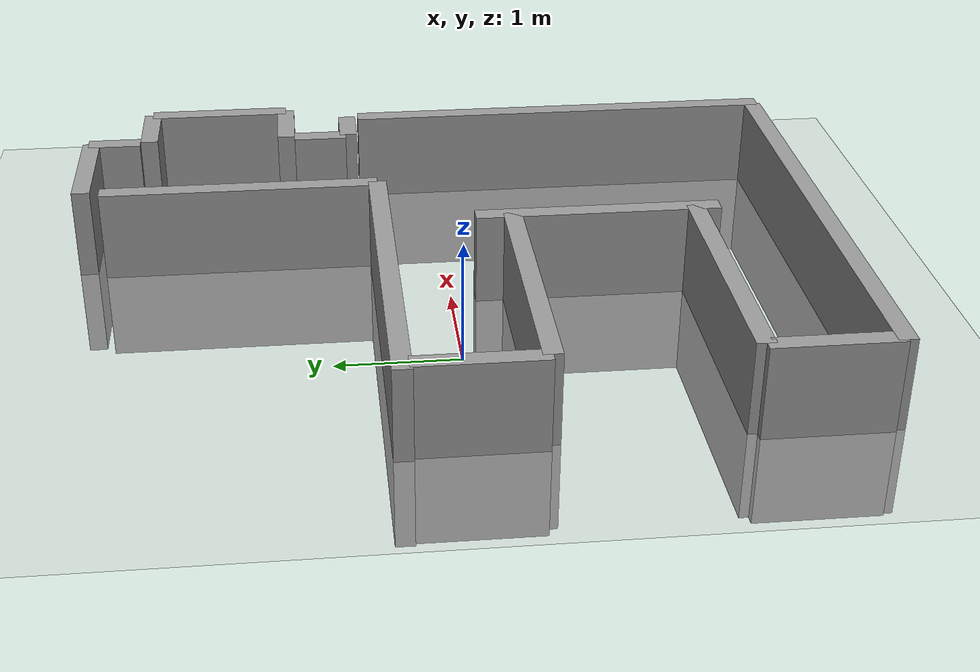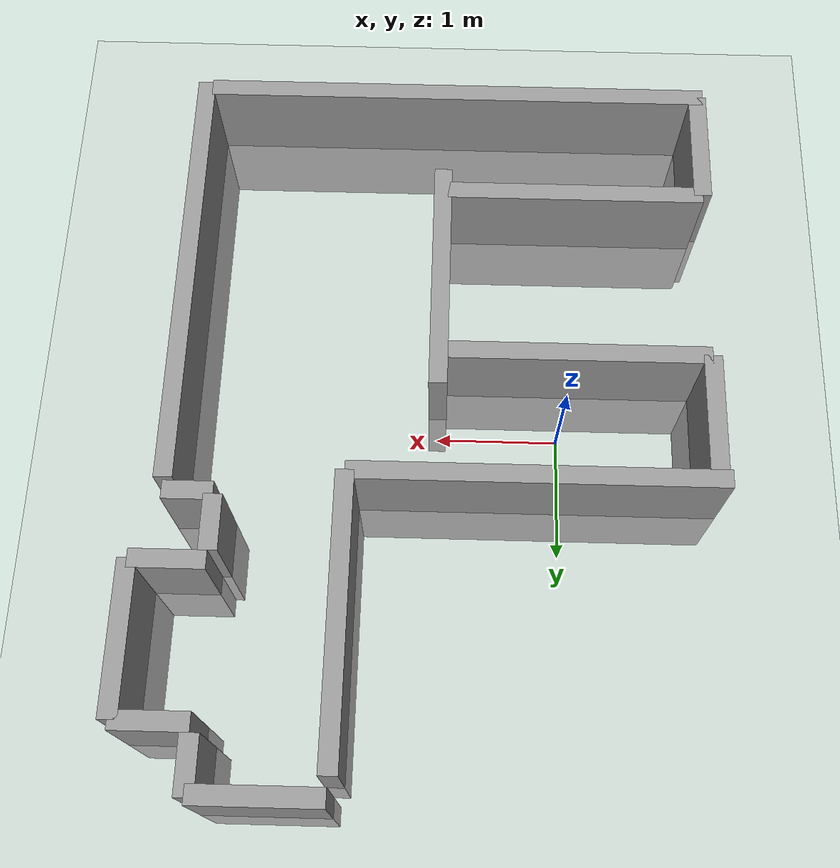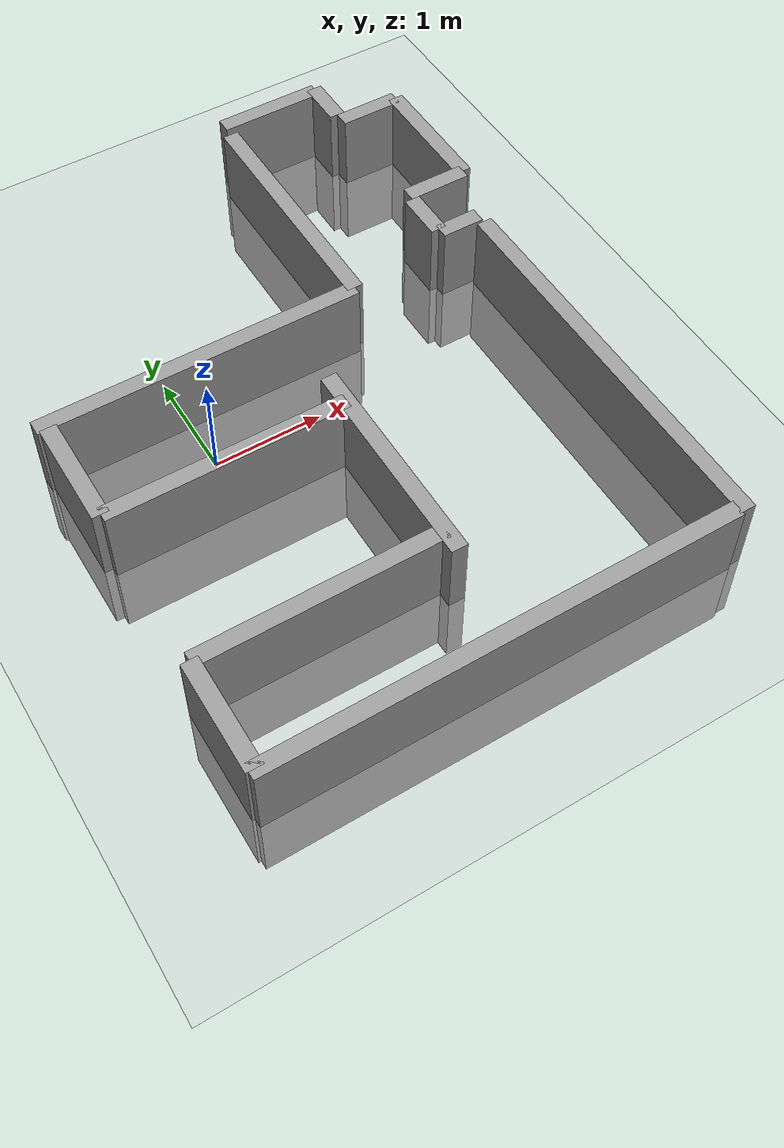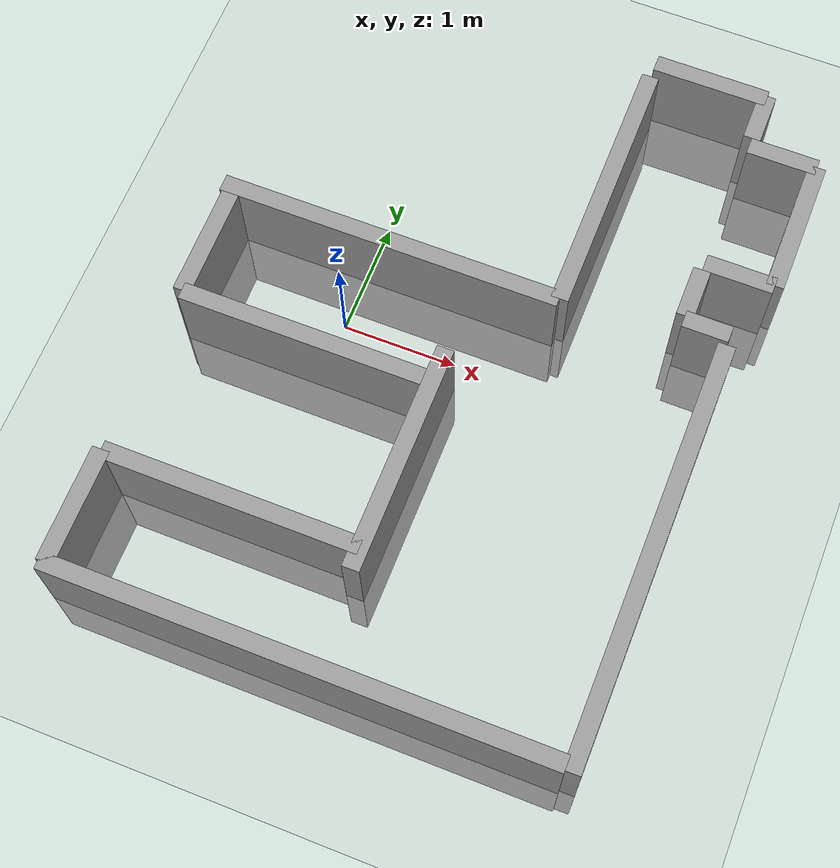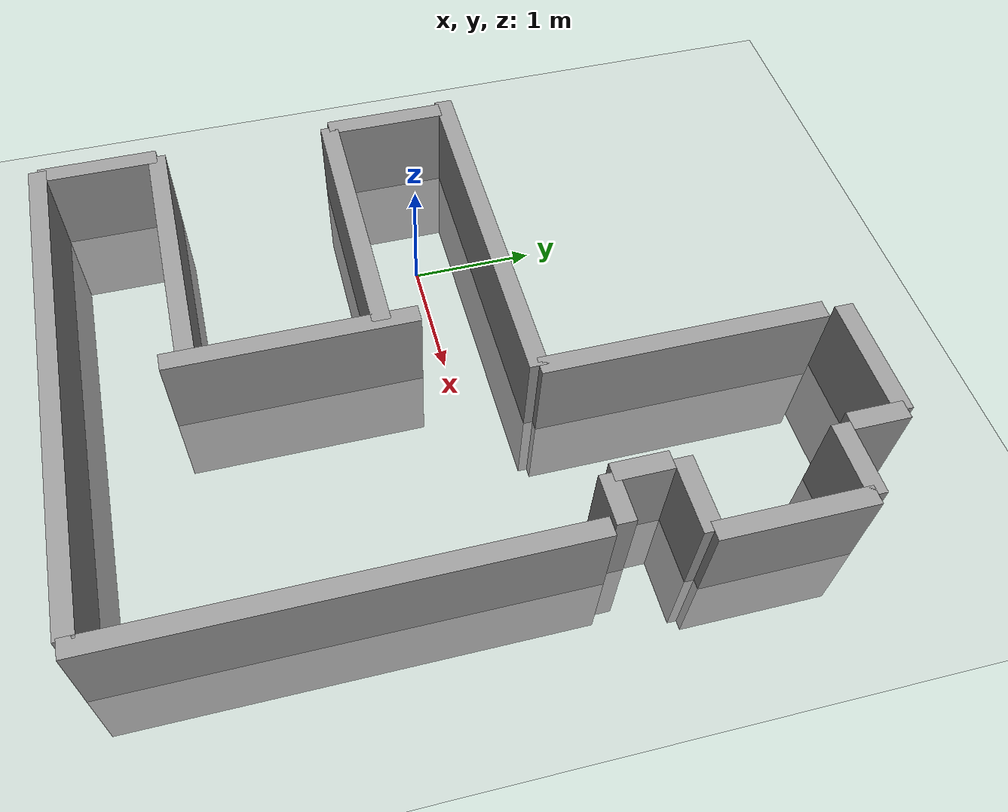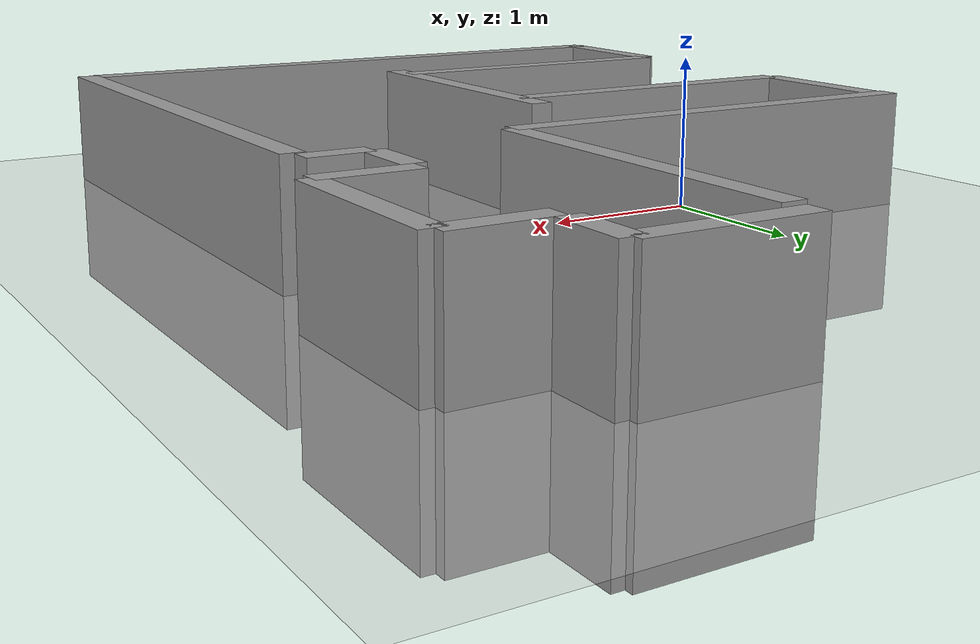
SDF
<sdf version='1.4'>
  <world name='default'>
    <light name='sun' type='directional'>
      <cast_shadows>1</cast_shadows>
      <pose>0 0 10 0 -0 0</pose>
      <diffuse>0.8 0.8 0.8 1</diffuse>
      <specular>0.2 0.2 0.2 1</specular>
      <attenuation>
        <range>1000</range>
        <constant>0.9</constant>
        <linear>0.01</linear>
        <quadratic>0.001</quadratic>
      </attenuation>
      <direction>0.5 0.1 -0.9</direction>
    </light>
        <model name='ground_plane'>
      <static>1</static>
      <link name='link'>
        <collision name='collision'>
          <geometry>
            <plane>
              <normal>0 0 1</normal>
              <size>100 100</size>
            </plane>
          </geometry>
          <surface>
            <friction>
              <ode>
                <mu>100</mu>
                <mu2>50</mu2>
              </ode>
            </friction>
            <bounce/>
            <contact>
              <ode/>
            </contact>
          </surface>
          <max_contacts>10</max_contacts>
        </collision>
        <visual name='visual'>
          <cast_shadows>0</cast_shadows>
          <geometry>
            <plane>
              <normal>0 0 1</normal>
              <size>100 100</size>
            </plane>
          </geometry>
          <material>
            <script>
              <uri>file://media/materials/scripts/gazebo.material</uri>
              <name>Gazebo/Grey</name>
            </script>
          </material>
        </visual>
        <velocity_decay>
          <linear>0</linear>
          <angular>0</angular>
        </velocity_decay>
        <self_collide>0</self_collide>
        <kinematic>0</kinematic>
        <gravity>1</gravity>
      </link>
    </model>
    <scene>
      <ambient>0.4 0.4 0.4 1</ambient>
      <background>0.7 0.7 0.7 1</background>
      <shadows>0</shadows>
    </scene>
    <gui fullscreen='0'>
      <camera name='user_camera'>
        <pose>1 0 8 0 1.56 3.14</pose>
        <view_controller>orbit</view_controller>
      </camera>
    </gui>
  <model name='myworld'>
    <pose frame=''>0 0 0 0 -0 0</pose>
    <link name='Wall_0'>
      <collision name='Wall_0_Collision'>
        <geometry>
          <box>
            <size>3 0.15 1.5</size>
          </box>
        </geometry>
        <pose frame=''>0.5 0 0 0 -0 0</pose>
      </collision>
      <visual name='Wall_0_Visual'>
        <pose frame=''>0.5 0 0 0 -0 0</pose>
        <geometry>
          <box>
            <size>3 0.15 1.5</size>
          </box>
        </geometry>
        <material>
          <script>
            <uri>file://media/materials/scripts/gazebo.material</uri>
            <name>Gazebo/Grey</name>
          </script>
          <ambient>1 1 1 1</ambient>
        </material>
      </visual>
      <pose frame=''>-0.3 0.55 0 0 0 0</pose>
    </link>
   <link name='Wall_1'>
      <collision name='Wall_1_Collision'>
        <geometry>
          <box>
            <size>2.2 0.15 1.5</size>
          </box>
        </geometry>
        <pose frame=''>0.5 0 0 0 -0 0</pose>
      </collision>
      <visual name='Wall_1_Visual'>
        <pose frame=''>0.5 0 0 0 -0 0</pose>
        <geometry>
          <box>
            <size>2.2 0.15 1.5</size>
          </box>
        </geometry>
        <material>
          <script>
            <uri>file://media/materials/scripts/gazebo.material</uri>
            <name>Gazebo/Grey</name>
          </script>
          <ambient>1 1 1 1</ambient>
        </material>
      </visual>
      <pose frame=''>-0.6 -0.5 0 0 0 0</pose>
    </link>
   <link name='Wall_2'>
      <collision name='Wall_2_Collision'>
        <geometry>
          <box>
            <size>1 0.15 1.5</size>
          </box>
        </geometry>
        <pose frame=''>0.5 0 0 0 -0 0</pose>
      </collision>
      <visual name='Wall_2_Visual'>
        <pose frame=''>0.5 0 0 0 -0 0</pose>
        <geometry>
          <box>
            <size>1 0.15 1.5</size>
          </box>
        </geometry>
        <material>
          <script>
            <uri>file://media/materials/scripts/gazebo.material</uri>
            <name>Gazebo/Grey</name>
          </script>
          <ambient>1 1 1 1</ambient>
        </material>
      </visual>
      <pose frame=''>-1.2 0.5 0 0 0 -1.5708</pose>
    </link>
   <link name='Wall_3'>
      <collision name='Wall_3_Collision'>
        <geometry>
          <box>
            <size>2 0.15 1.5</size>
          </box>
        </geometry>
        <pose frame=''>0.5 0 0 0 -0 0</pose>
      </collision>
      <visual name='Wall_3_Visual'>
        <pose frame=''>0.5 0 0 0 -0 0</pose>
        <geometry>
          <box>
            <size>2 0.15 1.5</size>
          </box>
        </geometry>
        <material>
          <script>
            <uri>file://media/materials/scripts/gazebo.material</uri>
            <name>Gazebo/Grey</name>
          </script>
          <ambient>1 1 1 1</ambient>
        </material>
      </visual>
      <pose frame=''>1 -0.7 0 0 0 -1.5708</pose>
    </link>
    <link name='Wall_4'>
      <collision name='Wall_4_Collision'>
        <geometry>
          <box>
            <size>2.2 0.15 1.5</size>
          </box>
        </geometry>
        <pose frame=''>0.5 0 0 0 -0 0</pose>
      </collision>
      <visual name='Wall_4_Visual'>
        <pose frame=''>0.5 0 0 0 -0 0</pose>
        <geometry>
          <box>
            <size>2.2 0.15 1.5</size>
          </box>
        </geometry>
        <material>
          <script>
            <uri>file://media/materials/scripts/gazebo.material</uri>
            <name>Gazebo/Grey</name>
          </script>
          <ambient>1 1 1 1</ambient>
        </material>
      </visual>
      <pose frame=''>-0.6 -2 0 0 0 0</pose>
    </link>

   <link name='Wall_5'>
      <collision name='Wall_5_Collision'>
        <geometry>
          <box>
            <size>1 0.15 1.5</size>
          </box>
        </geometry>
        <pose frame=''>0.5 0 0 0 -0 0</pose>
      </collision>
      <visual name='Wall_5_Visual'>
        <pose frame=''>0.5 0 0 0 -0 0</pose>
        <geometry>
          <box>
            <size>1 0.15 1.5</size>
          </box>
        </geometry>
        <material>
          <script>
            <uri>file://media/materials/scripts/gazebo.material</uri>
            <name>Gazebo/Grey</name>
          </script>
          <ambient>1 1 1 1</ambient>
        </material>
      </visual>
      <pose frame=''>-1.2 -2 0 0 0 -1.5708</pose>
    </link>

    <link name='Wall_6'>
      <collision name='Wall_6_Collision'>
        <geometry>
          <box>
            <size>0.4 0.15 1.5</size>
          </box>
        </geometry>
        <pose frame=''>0.5 0 0 0 -0 0</pose>
      </collision>
      <visual name='Wall_6_Visual'>
        <pose frame=''>0.5 0 0 0 -0 0</pose>
        <geometry>
          <box>
            <size>0.4 0.15 1.5</size>
          </box>
        </geometry>
        <material>
          <script>
            <uri>file://media/materials/scripts/gazebo.material</uri>
            <name>Gazebo/Grey</name>
          </script>
          <ambient>1 1 1 1</ambient>
        </material>
      </visual>
      <pose frame=''>2.4 0.75 0 0 0 0</pose>
    </link>

   <link name='Wall_7'>
      <collision name='Wall_7_Collision'>
        <geometry>
          <box>
            <size>4.3 0.15 1.5</size>
          </box>
        </geometry>
        <pose frame=''>0.5 0 0 0 -0 0</pose>
      </collision>
      <visual name='Wall_7_Visual'>
        <pose frame=''>0.5 0 0 0 -0 0</pose>
        <geometry>
          <box>
            <size>4.3 0.15 1.5</size>
          </box>
        </geometry>
        <material>
          <script>
            <uri>file://media/materials/scripts/gazebo.material</uri>
            <name>Gazebo/Grey</name>
          </script>
          <ambient>1 1 1 1</ambient>
        </material>
      </visual>
      <pose frame=''>0.4 -3 0 0 0 0</pose>
    </link>
   <link name='Wall_9'>
      <collision name='Wall_9_Collision'>
        <geometry>
          <box>
            <size>3.7 0.15 1.5</size>
          </box>
        </geometry>
        <pose frame=''>0.5 0 0 0 -0 0</pose>
      </collision>
      <visual name='Wall_9_Visual'>
        <pose frame=''>0.5 0 0 0 -0 0</pose>
        <geometry>
          <box>
            <size>3.7 0.15 1.5</size>
          </box>
        </geometry>
        <material>
          <script>
            <uri>file://media/materials/scripts/gazebo.material</uri>
            <name>Gazebo/Grey</name>
          </script>
          <ambient>1 1 1 1</ambient>
        </material>
      </visual>
      <pose frame=''>3.1 -0.7 0 0 0 -1.5708</pose>
    </link>
  <link name='Wall_11'>
      <collision name='Wall_11_Collision'>
        <geometry>
          <box>
            <size>0.45 0.15 1.5</size>
          </box>
        </geometry>
        <pose frame=''>0.5 0 0 0 -0 0</pose>
      </collision>
      <visual name='Wall_11_Visual'>
        <pose frame=''>0.5 0 0 0 -0 0</pose>
        <geometry>
          <box>
            <size>0.45 0.15 1.5</size>
          </box>
        </geometry>
        <material>
          <script>
            <uri>file://media/materials/scripts/gazebo.material</uri>
            <name>Gazebo/Grey</name>
          </script>
          <ambient>1 1 1 1</ambient>
        </material>
      </visual>
      <pose frame=''>2.7 1.5 0 0 0 -1.5708</pose>
    </link>
    <link name='Wall_12'>
      <collision name='Wall_12_Collision'>
        <geometry>
          <box>
            <size>0.6 0.15 1.5</size>
          </box>
        </geometry>
        <pose frame=''>0.5 0 0 0 -0 0</pose>
      </collision>
      <visual name='Wall_12_Visual'>
        <pose frame=''>0.5 0 0 0 -0 0</pose>
        <geometry>
          <box>
            <size>0.6 0.15 1.5</size>
          </box>
        </geometry>
        <material>
          <script>
            <uri>file://media/materials/scripts/gazebo.material</uri>
            <name>Gazebo/Grey</name>
          </script>
          <ambient>1 1 1 1</ambient>
        </material>
      </visual>
      <pose frame=''>2.5 1.3 0 0 0 0</pose>
    </link>
  <link name='Wall_13'>
      <collision name='Wall_13_Collision'>
        <geometry>
          <box>
            <size>1.2 0.15 1.5</size>
          </box>
        </geometry>
        <pose frame=''>0.5 0 0 0 -0 0</pose>
      </collision>
      <visual name='Wall_13_Visual'>
        <pose frame=''>0.5 0 0 0 -0 0</pose>
        <geometry>
          <box>
            <size>1.2 0.15 1.5</size>
          </box>
        </geometry>
        <material>
          <script>
            <uri>file://media/materials/scripts/gazebo.material</uri>
            <name>Gazebo/Grey</name>
          </script>
          <ambient>1 1 1 1</ambient>
        </material>
      </visual>
      <pose frame=''>3.3 2.4 0 0 0 -1.5708</pose>
    </link>

    <link name='Wall_14'>
      <collision name='Wall_14_Collision'>
        <geometry>
          <box>
            <size>0.6 0.15 1.5</size>
          </box>
        </geometry>
        <pose frame=''>0.5 0 0 0 -0 0</pose>
      </collision>
      <visual name='Wall_14_Visual'>
        <pose frame=''>0.5 0 0 0 -0 0</pose>
        <geometry>
          <box>
            <size>0.6 0.15 1.5</size>
          </box>
        </geometry>
        <material>
          <script>
            <uri>file://media/materials/scripts/gazebo.material</uri>
            <name>Gazebo/Grey</name>
          </script>
          <ambient>1 1 1 1</ambient>
        </material>
      </visual>
      <pose frame=''>2.5 2.5 0 0 0 0</pose>
    </link>
    <link name='Wall_15'>
      <collision name='Wall_15_Collision'>
        <geometry>
          <box>
            <size>1 0.15 1.5</size>
          </box>
        </geometry>
        <pose frame=''>0.5 0 0 0 -0 0</pose>
      </collision>
      <visual name='Wall_15_Visual'>
        <pose frame=''>0.5 0 0 0 -0 0</pose>
        <geometry>
          <box>
            <size>1 0.15 1.5</size>
          </box>
        </geometry>
        <material>
          <script>
            <uri>file://media/materials/scripts/gazebo.material</uri>
            <name>Gazebo/Grey</name>
          </script>
          <ambient>1 1 1 1</ambient>
        </material>
      </visual>
      <pose frame=''>1.7 3 0 0 0 0</pose>
    </link>
  <link name='Wall_16'>
      <collision name='Wall_16_Collision'>
        <geometry>
          <box>
            <size>0.4 0.15 1.5</size>
          </box>
        </geometry>
        <pose frame=''>0.5 0 0 0 -0 0</pose>
      </collision>
      <visual name='Wall_16_Visual'>
        <pose frame=''>0.5 0 0 0 -0 0</pose>
        <geometry>
          <box>
            <size>0.45 0.15 1.5</size>
          </box>
        </geometry>
        <material>
          <script>
            <uri>file://media/materials/scripts/gazebo.material</uri>
            <name>Gazebo/Grey</name>
          </script>
          <ambient>1 1 1 1</ambient>
        </material>
      </visual>
      <pose frame=''>2.7 3.3 0 0 0 -1.5708</pose>
    </link>
  <link name='Wall_17'>
      <collision name='Wall_17_Collision'>
        <geometry>
          <box>
            <size>2.3 0.15 1.5</size>
          </box>
        </geometry>
        <pose frame=''>0.5 0 0 0 -0 0</pose>
      </collision>
      <visual name='Wall_17_Visual'>
        <pose frame=''>0.5 0 0 0 -0 0</pose>
        <geometry>
          <box>
            <size>2.3 0.15 1.5</size>
          </box>
        </geometry>
        <material>
          <script>
            <uri>file://media/materials/scripts/gazebo.material</uri>
            <name>Gazebo/Grey</name>
          </script>
          <ambient>1 1 1 1</ambient>
        </material>
      </visual>
      <pose frame=''>1.7 2.2 0 0 0 -1.5708</pose>
    </link>
     <static>1</static>
  </model>
  </world>
</sdf>
